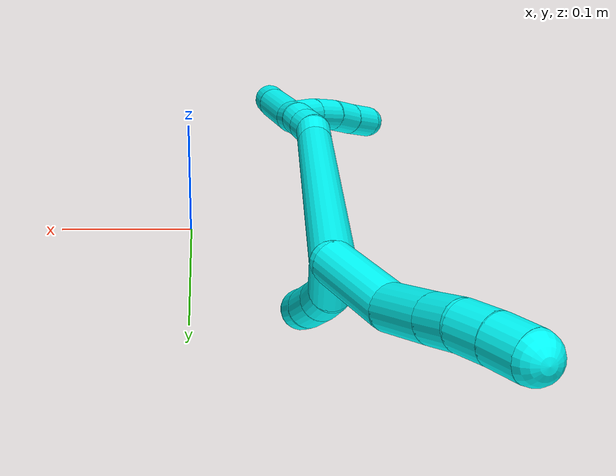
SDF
<sdf version="1.7">
 <world name="default">
  <model name="3">
   <static>0</static>
   <link name="3">
    <collision name="collision-cylinder-e_1_2_8">
     <pose>-0.008274 0.001855 0.024807 -0.074641 -0.321108 0.012093</pose>
     <geometry><cylinder><radius>0.0125</radius><length>0.052433</length></cylinder></geometry>
     <surface>
      <friction><ode><mu>1.16</mu><mu2>1.16</mu2><slip1>0</slip1><slip2>0</slip2></ode></friction>
      <contact><ode><kp>1e+06</kp><kd>1</kd><max_vel>0</max_vel><min_depth>0.001</min_depth></ode></contact>
     </surface>
    </collision>
    <visual name="visual-cylinder-e_1_2_8">
     <pose>-0.008274 0.001855 0.024807 -0.074641 -0.321108 0.012093</pose>
     <geometry><cylinder><radius>0.0125</radius><length>0.052433</length></cylinder></geometry>
     <material><ambient>0.003922 1 0.996078 1</ambient></material>
    </visual>
    <collision name="collision-cylinder-e_2_8_9">
     <pose>-0.018776 0.000256 0.067075 0.195329 -0.124482 -0.012212</pose>
     <geometry><cylinder><radius>0.0125</radius><length>0.035876</length></cylinder></geometry>
     <surface>
      <friction><ode><mu>1.16</mu><mu2>1.16</mu2><slip1>0</slip1><slip2>0</slip2></ode></friction>
      <contact><ode><kp>1e+06</kp><kd>1</kd><max_vel>0</max_vel><min_depth>0.001</min_depth></ode></contact>
     </surface>
    </collision>
    <visual name="visual-cylinder-e_2_8_9">
     <pose>-0.018776 0.000256 0.067075 0.195329 -0.124482 -0.012212</pose>
     <geometry><cylinder><radius>0.0125</radius><length>0.035876</length></cylinder></geometry>
     <material><ambient>0.003922 1 0.996078 1</ambient></material>
    </visual>
    <collision name="collision-cylinder-e_3_9_10">
     <pose>-0.022122 -0.005401 0.09486 0.210179 -0.10562 -0.011151</pose>
     <geometry><cylinder><radius>0.0125</radius><length>0.021231</length></cylinder></geometry>
     <surface>
      <friction><ode><mu>1.16</mu><mu2>1.16</mu2><slip1>0</slip1><slip2>0</slip2></ode></friction>
      <contact><ode><kp>1e+06</kp><kd>1</kd><max_vel>0</max_vel><min_depth>0.001</min_depth></ode></contact>
     </surface>
    </collision>
    <visual name="visual-cylinder-e_3_9_10">
     <pose>-0.022122 -0.005401 0.09486 0.210179 -0.10562 -0.011151</pose>
     <geometry><cylinder><radius>0.0125</radius><length>0.021231</length></cylinder></geometry>
     <material><ambient>0.003922 1 0.996078 1</ambient></material>
    </visual>
    <collision name="collision-cylinder-e_4_10_11">
     <pose>-0.02594 -0.008882 0.114848 0.131555 -0.270067 -0.017899</pose>
     <geometry><cylinder><radius>0.0125</radius><length>0.02023</length></cylinder></geometry>
     <surface>
      <friction><ode><mu>1.16</mu><mu2>1.16</mu2><slip1>0</slip1><slip2>0</slip2></ode></friction>
      <contact><ode><kp>1e+06</kp><kd>1</kd><max_vel>0</max_vel><min_depth>0.001</min_depth></ode></contact>
     </surface>
    </collision>
    <visual name="visual-cylinder-e_4_10_11">
     <pose>-0.02594 -0.008882 0.114848 0.131555 -0.270067 -0.017899</pose>
     <geometry><cylinder><radius>0.0125</radius><length>0.02023</length></cylinder></geometry>
     <material><ambient>0.003922 1 0.996078 1</ambient></material>
    </visual>
    <collision name="collision-cylinder-e_5_11_6">
     <pose>-0.031705 -0.010914 0.134122 0.078225 -0.307945 -0.012147</pose>
     <geometry><cylinder><radius>0.0125</radius><length>0.020231</length></cylinder></geometry>
     <surface>
      <friction><ode><mu>1.16</mu><mu2>1.16</mu2><slip1>0</slip1><slip2>0</slip2></ode></friction>
      <contact><ode><kp>1e+06</kp><kd>1</kd><max_vel>0</max_vel><min_depth>0.001</min_depth></ode></contact>
     </surface>
    </collision>
    <visual name="visual-cylinder-e_5_11_6">
     <pose>-0.031705 -0.010914 0.134122 0.078225 -0.307945 -0.012147</pose>
     <geometry><cylinder><radius>0.0125</radius><length>0.020231</length></cylinder></geometry>
     <material><ambient>0.003922 1 0.996078 1</ambient></material>
    </visual>
    <collision name="collision-cylinder-e_1_2_12">
     <pose>-0.008416 0.008018 -0.011935 -2.55004 -0.529569 1.45436</pose>
     <geometry><cylinder><radius>0.0125</radius><length>0.033321</length></cylinder></geometry>
     <surface>
      <friction><ode><mu>1.16</mu><mu2>1.16</mu2><slip1>0</slip1><slip2>0</slip2></ode></friction>
      <contact><ode><kp>1e+06</kp><kd>1</kd><max_vel>0</max_vel><min_depth>0.001</min_depth></ode></contact>
     </surface>
    </collision>
    <visual name="visual-cylinder-e_1_2_12">
     <pose>-0.008416 0.008018 -0.011935 -2.55004 -0.529569 1.45436</pose>
     <geometry><cylinder><radius>0.0125</radius><length>0.033321</length></cylinder></geometry>
     <material><ambient>0.003922 1 0.996078 1</ambient></material>
    </visual>
    <collision name="collision-cylinder-e_2_12_13">
     <pose>-0.01938 0.020214 -0.032858 -2.70643 -0.251626 1.0393</pose>
     <geometry><cylinder><radius>0.0125</radius><length>0.020467</length></cylinder></geometry>
     <surface>
      <friction><ode><mu>1.16</mu><mu2>1.16</mu2><slip1>0</slip1><slip2>0</slip2></ode></friction>
      <contact><ode><kp>1e+06</kp><kd>1</kd><max_vel>0</max_vel><min_depth>0.001</min_depth></ode></contact>
     </surface>
    </collision>
    <visual name="visual-cylinder-e_2_12_13">
     <pose>-0.01938 0.020214 -0.032858 -2.70643 -0.251626 1.0393</pose>
     <geometry><cylinder><radius>0.0125</radius><length>0.020467</length></cylinder></geometry>
     <material><ambient>0.003922 1 0.996078 1</ambient></material>
    </visual>
    <collision name="collision-cylinder-e_3_13_14">
     <pose>-0.02446 0.029233 -0.053551 -2.74951 -0.197288 0.92462</pose>
     <geometry><cylinder><radius>0.0125</radius><length>0.025835</length></cylinder></geometry>
     <surface>
      <friction><ode><mu>1.16</mu><mu2>1.16</mu2><slip1>0</slip1><slip2>0</slip2></ode></friction>
      <contact><ode><kp>1e+06</kp><kd>1</kd><max_vel>0</max_vel><min_depth>0.001</min_depth></ode></contact>
     </surface>
    </collision>
    <visual name="visual-cylinder-e_3_13_14">
     <pose>-0.02446 0.029233 -0.053551 -2.74951 -0.197288 0.92462</pose>
     <geometry><cylinder><radius>0.0125</radius><length>0.025835</length></cylinder></geometry>
     <material><ambient>0.003922 1 0.996078 1</ambient></material>
    </visual>
    <collision name="collision-cylinder-e_4_14_5">
     <pose>-0.029218 0.036736 -0.074836 -2.87048 -0.220269 1.36255</pose>
     <geometry><cylinder><radius>0.0125</radius><length>0.020377</length></cylinder></geometry>
     <surface>
      <friction><ode><mu>1.16</mu><mu2>1.16</mu2><slip1>0</slip1><slip2>0</slip2></ode></friction>
      <contact><ode><kp>1e+06</kp><kd>1</kd><max_vel>0</max_vel><min_depth>0.001</min_depth></ode></contact>
     </surface>
    </collision>
    <visual name="visual-cylinder-e_4_14_5">
     <pose>-0.029218 0.036736 -0.074836 -2.87048 -0.220269 1.36255</pose>
     <geometry><cylinder><radius>0.0125</radius><length>0.020377</length></cylinder></geometry>
     <material><ambient>0.003922 1 0.996078 1</ambient></material>
    </visual>
    <collision name="collision-cylinder-e_1_2_15">
     <pose>-0.01529 -0.029297 -0.104744 2.86886 -0.139666 -0.942841</pose>
     <geometry><cylinder><radius>0.0125</radius><length>0.219667</length></cylinder></geometry>
     <surface>
      <friction><ode><mu>1.16</mu><mu2>1.16</mu2><slip1>0</slip1><slip2>0</slip2></ode></friction>
      <contact><ode><kp>1e+06</kp><kd>1</kd><max_vel>0</max_vel><min_depth>0.001</min_depth></ode></contact>
     </surface>
    </collision>
    <visual name="visual-cylinder-e_1_2_15">
     <pose>-0.01529 -0.029297 -0.104744 2.86886 -0.139666 -0.942841</pose>
     <geometry><cylinder><radius>0.0125</radius><length>0.219667</length></cylinder></geometry>
     <material><ambient>0.003922 1 0.996078 1</ambient></material>
    </visual>
    <collision name="collision-cylinder-e_2_15_16">
     <pose>-0.030945 -0.062548 -0.218816 2.74062 -0.036007 -0.176744</pose>
     <geometry><cylinder><radius>0.0125</radius><length>0.020275</length></cylinder></geometry>
     <surface>
      <friction><ode><mu>1.16</mu><mu2>1.16</mu2><slip1>0</slip1><slip2>0</slip2></ode></friction>
      <contact><ode><kp>1e+06</kp><kd>1</kd><max_vel>0</max_vel><min_depth>0.001</min_depth></ode></contact>
     </surface>
    </collision>
    <visual name="visual-cylinder-e_2_15_16">
     <pose>-0.030945 -0.062548 -0.218816 2.74062 -0.036007 -0.176744</pose>
     <geometry><cylinder><radius>0.0125</radius><length>0.020275</length></cylinder></geometry>
     <material><ambient>0.003922 1 0.996078 1</ambient></material>
    </visual>
    <collision name="collision-cylinder-e_3_16_17">
     <pose>-0.030818 -0.067435 -0.238093 3.04807 0.049261 0.969199</pose>
     <geometry><cylinder><radius>0.0125</radius><length>0.02001</length></cylinder></geometry>
     <surface>
      <friction><ode><mu>1.16</mu><mu2>1.16</mu2><slip1>0</slip1><slip2>0</slip2></ode></friction>
      <contact><ode><kp>1e+06</kp><kd>1</kd><max_vel>0</max_vel><min_depth>0.001</min_depth></ode></contact>
     </surface>
    </collision>
    <visual name="visual-cylinder-e_3_16_17">
     <pose>-0.030818 -0.067435 -0.238093 3.04807 0.049261 0.969199</pose>
     <geometry><cylinder><radius>0.0125</radius><length>0.02001</length></cylinder></geometry>
     <material><ambient>0.003922 1 0.996078 1</ambient></material>
    </visual>
    <collision name="collision-cylinder-e_4_17_18">
     <pose>-0.029411 -0.069696 -0.257929 3.00813 0.091355 1.19978</pose>
     <geometry><cylinder><radius>0.0125</radius><length>0.020035</length></cylinder></geometry>
     <surface>
      <friction><ode><mu>1.16</mu><mu2>1.16</mu2><slip1>0</slip1><slip2>0</slip2></ode></friction>
      <contact><ode><kp>1e+06</kp><kd>1</kd><max_vel>0</max_vel><min_depth>0.001</min_depth></ode></contact>
     </surface>
    </collision>
    <visual name="visual-cylinder-e_4_17_18">
     <pose>-0.029411 -0.069696 -0.257929 3.00813 0.091355 1.19978</pose>
     <geometry><cylinder><radius>0.0125</radius><length>0.020035</length></cylinder></geometry>
     <material><ambient>0.003922 1 0.996078 1</ambient></material>
    </visual>
    <collision name="collision-cylinder-e_5_18_1">
     <pose>-0.029193 -0.070982 -0.277798 -3.13742 -0.069609 3.02184</pose>
     <geometry><cylinder><radius>0.0125</radius><length>0.020012</length></cylinder></geometry>
     <surface>
      <friction><ode><mu>1.16</mu><mu2>1.16</mu2><slip1>0</slip1><slip2>0</slip2></ode></friction>
      <contact><ode><kp>1e+06</kp><kd>1</kd><max_vel>0</max_vel><min_depth>0.001</min_depth></ode></contact>
     </surface>
    </collision>
    <visual name="visual-cylinder-e_5_18_1">
     <pose>-0.029193 -0.070982 -0.277798 -3.13742 -0.069609 3.02184</pose>
     <geometry><cylinder><radius>0.0125</radius><length>0.020012</length></cylinder></geometry>
     <material><ambient>0.003922 1 0.996078 1</ambient></material>
    </visual>
    <collision name="collision-cylinder-e_1_1_19">
     <pose>-0.039472 -0.076474 -0.296374 2.5695 -0.753129 -1.8626</pose>
     <geometry><cylinder><radius>0.0125</radius><length>0.028024</length></cylinder></geometry>
     <surface>
      <friction><ode><mu>1.16</mu><mu2>1.16</mu2><slip1>0</slip1><slip2>0</slip2></ode></friction>
      <contact><ode><kp>1e+06</kp><kd>1</kd><max_vel>0</max_vel><min_depth>0.001</min_depth></ode></contact>
     </surface>
    </collision>
    <visual name="visual-cylinder-e_1_1_19">
     <pose>-0.039472 -0.076474 -0.296374 2.5695 -0.753129 -1.8626</pose>
     <geometry><cylinder><radius>0.0125</radius><length>0.028024</length></cylinder></geometry>
     <material><ambient>0.003922 1 0.996078 1</ambient></material>
    </visual>
    <collision name="collision-cylinder-e_2_19_20">
     <pose>-0.058743 -0.085966 -0.31108 2.56697 -0.926278 -2.07296</pose>
     <geometry><cylinder><radius>0.0125</radius><length>0.024237</length></cylinder></geometry>
     <surface>
      <friction><ode><mu>1.16</mu><mu2>1.16</mu2><slip1>0</slip1><slip2>0</slip2></ode></friction>
      <contact><ode><kp>1e+06</kp><kd>1</kd><max_vel>0</max_vel><min_depth>0.001</min_depth></ode></contact>
     </surface>
    </collision>
    <visual name="visual-cylinder-e_2_19_20">
     <pose>-0.058743 -0.085966 -0.31108 2.56697 -0.926278 -2.07296</pose>
     <geometry><cylinder><radius>0.0125</radius><length>0.024237</length></cylinder></geometry>
     <material><ambient>0.003922 1 0.996078 1</ambient></material>
    </visual>
    <collision name="collision-cylinder-e_3_20_21">
     <pose>-0.077944 -0.092478 -0.323097 2.73329 -0.976176 -2.39797</pose>
     <geometry><cylinder><radius>0.0125</radius><length>0.022971</length></cylinder></geometry>
     <surface>
      <friction><ode><mu>1.16</mu><mu2>1.16</mu2><slip1>0</slip1><slip2>0</slip2></ode></friction>
      <contact><ode><kp>1e+06</kp><kd>1</kd><max_vel>0</max_vel><min_depth>0.001</min_depth></ode></contact>
     </surface>
    </collision>
    <visual name="visual-cylinder-e_3_20_21">
     <pose>-0.077944 -0.092478 -0.323097 2.73329 -0.976176 -2.39797</pose>
     <geometry><cylinder><radius>0.0125</radius><length>0.022971</length></cylinder></geometry>
     <material><ambient>0.003922 1 0.996078 1</ambient></material>
    </visual>
    <collision name="collision-cylinder-e_4_21_4">
     <pose>-0.097487 -0.098192 -0.335545 2.69176 -0.943879 -2.29881</pose>
     <geometry><cylinder><radius>0.0125</radius><length>0.024769</length></cylinder></geometry>
     <surface>
      <friction><ode><mu>1.16</mu><mu2>1.16</mu2><slip1>0</slip1><slip2>0</slip2></ode></friction>
      <contact><ode><kp>1e+06</kp><kd>1</kd><max_vel>0</max_vel><min_depth>0.001</min_depth></ode></contact>
     </surface>
    </collision>
    <visual name="visual-cylinder-e_4_21_4">
     <pose>-0.097487 -0.098192 -0.335545 2.69176 -0.943879 -2.29881</pose>
     <geometry><cylinder><radius>0.0125</radius><length>0.024769</length></cylinder></geometry>
     <material><ambient>0.003922 1 0.996078 1</ambient></material>
    </visual>
    <collision name="collision-cylinder-e_1_1_22">
     <pose>-0.029979 -0.073916 -0.320404 3.05064 -0.002744 -0.060284</pose>
     <geometry><cylinder><radius>0.0125</radius><length>0.06552</length></cylinder></geometry>
     <surface>
      <friction><ode><mu>1.16</mu><mu2>1.16</mu2><slip1>0</slip1><slip2>0</slip2></ode></friction>
      <contact><ode><kp>1e+06</kp><kd>1</kd><max_vel>0</max_vel><min_depth>0.001</min_depth></ode></contact>
     </surface>
    </collision>
    <visual name="visual-cylinder-e_1_1_22">
     <pose>-0.029979 -0.073916 -0.320404 3.05064 -0.002744 -0.060284</pose>
     <geometry><cylinder><radius>0.0125</radius><length>0.06552</length></cylinder></geometry>
     <material><ambient>0.003922 1 0.996078 1</ambient></material>
    </visual>
    <collision name="collision-cylinder-e_2_22_3">
     <pose>-0.032103 -0.078506 -0.370071 3.04712 -0.118287 -1.79414</pose>
     <geometry><cylinder><radius>0.0125</radius><length>0.03448</length></cylinder></geometry>
     <surface>
      <friction><ode><mu>1.16</mu><mu2>1.16</mu2><slip1>0</slip1><slip2>0</slip2></ode></friction>
      <contact><ode><kp>1e+06</kp><kd>1</kd><max_vel>0</max_vel><min_depth>0.001</min_depth></ode></contact>
     </surface>
    </collision>
    <visual name="visual-cylinder-e_2_22_3">
     <pose>-0.032103 -0.078506 -0.370071 3.04712 -0.118287 -1.79414</pose>
     <geometry><cylinder><radius>0.0125</radius><length>0.03448</length></cylinder></geometry>
     <material><ambient>0.003922 1 0.996078 1</ambient></material>
    </visual>
    <collision name="collision-sphere-3">
     <pose>-0.034138 -0.080121 -0.387115 0 -0 0</pose>
     <geometry><sphere><radius>0.0125</radius></sphere></geometry>
     <surface>
      <friction><ode><mu>1.16</mu><mu2>1.16</mu2><slip1>0</slip1><slip2>0</slip2></ode></friction>
      <contact><ode><kp>1e+06</kp><kd>1</kd><max_vel>0</max_vel><min_depth>0.001</min_depth></ode></contact>
     </surface>
    </collision>
    <visual name="visual-sphere-3">
     <pose>-0.034138 -0.080121 -0.387115 0 -0 0</pose>
     <geometry><sphere><radius>0.0125</radius></sphere></geometry>
     <material><ambient>0.003922 1 0.996078 1</ambient></material>
    </visual>
    <collision name="collision-sphere-22">
     <pose>-0.030069 -0.076891 -0.353028 0 -0 0</pose>
     <geometry><sphere><radius>0.0125</radius></sphere></geometry>
     <surface>
      <friction><ode><mu>1.16</mu><mu2>1.16</mu2><slip1>0</slip1><slip2>0</slip2></ode></friction>
      <contact><ode><kp>1e+06</kp><kd>1</kd><max_vel>0</max_vel><min_depth>0.001</min_depth></ode></contact>
     </surface>
    </collision>
    <visual name="visual-sphere-22">
     <pose>-0.030069 -0.076891 -0.353028 0 -0 0</pose>
     <geometry><sphere><radius>0.0125</radius></sphere></geometry>
     <material><ambient>0.003922 1 0.996078 1</ambient></material>
    </visual>
    <collision name="collision-sphere-4">
     <pose>-0.107517 -0.101351 -0.342087 0 -0 0</pose>
     <geometry><sphere><radius>0.0125</radius></sphere></geometry>
     <surface>
      <friction><ode><mu>1.16</mu><mu2>1.16</mu2><slip1>0</slip1><slip2>0</slip2></ode></friction>
      <contact><ode><kp>1e+06</kp><kd>1</kd><max_vel>0</max_vel><min_depth>0.001</min_depth></ode></contact>
     </surface>
    </collision>
    <visual name="visual-sphere-4">
     <pose>-0.107517 -0.101351 -0.342087 0 -0 0</pose>
     <geometry><sphere><radius>0.0125</radius></sphere></geometry>
     <material><ambient>0.003922 1 0.996078 1</ambient></material>
    </visual>
    <collision name="collision-sphere-21">
     <pose>-0.087458 -0.095032 -0.329002 0 -0 0</pose>
     <geometry><sphere><radius>0.0125</radius></sphere></geometry>
     <surface>
      <friction><ode><mu>1.16</mu><mu2>1.16</mu2><slip1>0</slip1><slip2>0</slip2></ode></friction>
      <contact><ode><kp>1e+06</kp><kd>1</kd><max_vel>0</max_vel><min_depth>0.001</min_depth></ode></contact>
     </surface>
    </collision>
    <visual name="visual-sphere-21">
     <pose>-0.087458 -0.095032 -0.329002 0 -0 0</pose>
     <geometry><sphere><radius>0.0125</radius></sphere></geometry>
     <material><ambient>0.003922 1 0.996078 1</ambient></material>
    </visual>
    <collision name="collision-sphere-20">
     <pose>-0.06843 -0.089923 -0.317192 0 -0 0</pose>
     <geometry><sphere><radius>0.0125</radius></sphere></geometry>
     <surface>
      <friction><ode><mu>1.16</mu><mu2>1.16</mu2><slip1>0</slip1><slip2>0</slip2></ode></friction>
      <contact><ode><kp>1e+06</kp><kd>1</kd><max_vel>0</max_vel><min_depth>0.001</min_depth></ode></contact>
     </surface>
    </collision>
    <visual name="visual-sphere-20">
     <pose>-0.06843 -0.089923 -0.317192 0 -0 0</pose>
     <geometry><sphere><radius>0.0125</radius></sphere></geometry>
     <material><ambient>0.003922 1 0.996078 1</ambient></material>
    </visual>
    <collision name="collision-sphere-6">
     <pose>-0.034771 -0.011668 0.143732 0 -0 0</pose>
     <geometry><sphere><radius>0.0125</radius></sphere></geometry>
     <surface>
      <friction><ode><mu>1.16</mu><mu2>1.16</mu2><slip1>0</slip1><slip2>0</slip2></ode></friction>
      <contact><ode><kp>1e+06</kp><kd>1</kd><max_vel>0</max_vel><min_depth>0.001</min_depth></ode></contact>
     </surface>
    </collision>
    <visual name="visual-sphere-6">
     <pose>-0.034771 -0.011668 0.143732 0 -0 0</pose>
     <geometry><sphere><radius>0.0125</radius></sphere></geometry>
     <material><ambient>0.003922 1 0.996078 1</ambient></material>
    </visual>
    <collision name="collision-sphere-11">
     <pose>-0.028639 -0.010161 0.124512 0 -0 0</pose>
     <geometry><sphere><radius>0.0125</radius></sphere></geometry>
     <surface>
      <friction><ode><mu>1.16</mu><mu2>1.16</mu2><slip1>0</slip1><slip2>0</slip2></ode></friction>
      <contact><ode><kp>1e+06</kp><kd>1</kd><max_vel>0</max_vel><min_depth>0.001</min_depth></ode></contact>
     </surface>
    </collision>
    <visual name="visual-sphere-11">
     <pose>-0.028639 -0.010161 0.124512 0 -0 0</pose>
     <geometry><sphere><radius>0.0125</radius></sphere></geometry>
     <material><ambient>0.003922 1 0.996078 1</ambient></material>
    </visual>
    <collision name="collision-sphere-10">
     <pose>-0.023241 -0.007604 0.105183 0 -0 0</pose>
     <geometry><sphere><radius>0.0125</radius></sphere></geometry>
     <surface>
      <friction><ode><mu>1.16</mu><mu2>1.16</mu2><slip1>0</slip1><slip2>0</slip2></ode></friction>
      <contact><ode><kp>1e+06</kp><kd>1</kd><max_vel>0</max_vel><min_depth>0.001</min_depth></ode></contact>
     </surface>
    </collision>
    <visual name="visual-sphere-10">
     <pose>-0.023241 -0.007604 0.105183 0 -0 0</pose>
     <geometry><sphere><radius>0.0125</radius></sphere></geometry>
     <material><ambient>0.003922 1 0.996078 1</ambient></material>
    </visual>
    <collision name="collision-sphere-9">
     <pose>-0.021003 -0.003199 0.084536 0 -0 0</pose>
     <geometry><sphere><radius>0.0125</radius></sphere></geometry>
     <surface>
      <friction><ode><mu>1.16</mu><mu2>1.16</mu2><slip1>0</slip1><slip2>0</slip2></ode></friction>
      <contact><ode><kp>1e+06</kp><kd>1</kd><max_vel>0</max_vel><min_depth>0.001</min_depth></ode></contact>
     </surface>
    </collision>
    <visual name="visual-sphere-9">
     <pose>-0.021003 -0.003199 0.084536 0 -0 0</pose>
     <geometry><sphere><radius>0.0125</radius></sphere></geometry>
     <material><ambient>0.003922 1 0.996078 1</ambient></material>
    </visual>
    <collision name="collision-sphere-2">
     <geometry><sphere><radius>0.0125</radius></sphere></geometry>
     <surface>
      <friction><ode><mu>1.16</mu><mu2>1.16</mu2><slip1>0</slip1><slip2>0</slip2></ode></friction>
      <contact><ode><kp>1e+06</kp><kd>1</kd><max_vel>0</max_vel><min_depth>0.001</min_depth></ode></contact>
     </surface>
    </collision>
    <visual name="visual-sphere-2">
     <geometry><sphere><radius>0.0125</radius></sphere></geometry>
     <material><ambient>0.003922 1 0.996078 1</ambient></material>
    </visual>
    <collision name="collision-sphere-19">
     <pose>-0.049055 -0.082009 -0.304969 0 -0 0</pose>
     <geometry><sphere><radius>0.0125</radius></sphere></geometry>
     <surface>
      <friction><ode><mu>1.16</mu><mu2>1.16</mu2><slip1>0</slip1><slip2>0</slip2></ode></friction>
      <contact><ode><kp>1e+06</kp><kd>1</kd><max_vel>0</max_vel><min_depth>0.001</min_depth></ode></contact>
     </surface>
    </collision>
    <visual name="visual-sphere-19">
     <pose>-0.049055 -0.082009 -0.304969 0 -0 0</pose>
     <geometry><sphere><radius>0.0125</radius></sphere></geometry>
     <material><ambient>0.003922 1 0.996078 1</ambient></material>
    </visual>
    <collision name="collision-sphere-8">
     <pose>-0.016549 0.00371 0.049615 0 -0 0</pose>
     <geometry><sphere><radius>0.0125</radius></sphere></geometry>
     <surface>
      <friction><ode><mu>1.16</mu><mu2>1.16</mu2><slip1>0</slip1><slip2>0</slip2></ode></friction>
      <contact><ode><kp>1e+06</kp><kd>1</kd><max_vel>0</max_vel><min_depth>0.001</min_depth></ode></contact>
     </surface>
    </collision>
    <visual name="visual-sphere-8">
     <pose>-0.016549 0.00371 0.049615 0 -0 0</pose>
     <geometry><sphere><radius>0.0125</radius></sphere></geometry>
     <material><ambient>0.003922 1 0.996078 1</ambient></material>
    </visual>
    <collision name="collision-sphere-12">
     <pose>-0.016832 0.016036 -0.02387 0 -0 0</pose>
     <geometry><sphere><radius>0.0125</radius></sphere></geometry>
     <surface>
      <friction><ode><mu>1.16</mu><mu2>1.16</mu2><slip1>0</slip1><slip2>0</slip2></ode></friction>
      <contact><ode><kp>1e+06</kp><kd>1</kd><max_vel>0</max_vel><min_depth>0.001</min_depth></ode></contact>
     </surface>
    </collision>
    <visual name="visual-sphere-12">
     <pose>-0.016832 0.016036 -0.02387 0 -0 0</pose>
     <geometry><sphere><radius>0.0125</radius></sphere></geometry>
     <material><ambient>0.003922 1 0.996078 1</ambient></material>
    </visual>
    <collision name="collision-sphere-13">
     <pose>-0.021928 0.024393 -0.041846 0 -0 0</pose>
     <geometry><sphere><radius>0.0125</radius></sphere></geometry>
     <surface>
      <friction><ode><mu>1.16</mu><mu2>1.16</mu2><slip1>0</slip1><slip2>0</slip2></ode></friction>
      <contact><ode><kp>1e+06</kp><kd>1</kd><max_vel>0</max_vel><min_depth>0.001</min_depth></ode></contact>
     </surface>
    </collision>
    <visual name="visual-sphere-13">
     <pose>-0.021928 0.024393 -0.041846 0 -0 0</pose>
     <geometry><sphere><radius>0.0125</radius></sphere></geometry>
     <material><ambient>0.003922 1 0.996078 1</ambient></material>
    </visual>
    <collision name="collision-sphere-14">
     <pose>-0.026992 0.034073 -0.065257 0 -0 0</pose>
     <geometry><sphere><radius>0.0125</radius></sphere></geometry>
     <surface>
      <friction><ode><mu>1.16</mu><mu2>1.16</mu2><slip1>0</slip1><slip2>0</slip2></ode></friction>
      <contact><ode><kp>1e+06</kp><kd>1</kd><max_vel>0</max_vel><min_depth>0.001</min_depth></ode></contact>
     </surface>
    </collision>
    <visual name="visual-sphere-14">
     <pose>-0.026992 0.034073 -0.065257 0 -0 0</pose>
     <geometry><sphere><radius>0.0125</radius></sphere></geometry>
     <material><ambient>0.003922 1 0.996078 1</ambient></material>
    </visual>
    <collision name="collision-sphere-5">
     <pose>-0.031444 0.039398 -0.084415 0 -0 0</pose>
     <geometry><sphere><radius>0.0125</radius></sphere></geometry>
     <surface>
      <friction><ode><mu>1.16</mu><mu2>1.16</mu2><slip1>0</slip1><slip2>0</slip2></ode></friction>
      <contact><ode><kp>1e+06</kp><kd>1</kd><max_vel>0</max_vel><min_depth>0.001</min_depth></ode></contact>
     </surface>
    </collision>
    <visual name="visual-sphere-5">
     <pose>-0.031444 0.039398 -0.084415 0 -0 0</pose>
     <geometry><sphere><radius>0.0125</radius></sphere></geometry>
     <material><ambient>0.003922 1 0.996078 1</ambient></material>
    </visual>
    <collision name="collision-sphere-15">
     <pose>-0.03058 -0.058594 -0.209488 0 -0 0</pose>
     <geometry><sphere><radius>0.0125</radius></sphere></geometry>
     <surface>
      <friction><ode><mu>1.16</mu><mu2>1.16</mu2><slip1>0</slip1><slip2>0</slip2></ode></friction>
      <contact><ode><kp>1e+06</kp><kd>1</kd><max_vel>0</max_vel><min_depth>0.001</min_depth></ode></contact>
     </surface>
    </collision>
    <visual name="visual-sphere-15">
     <pose>-0.03058 -0.058594 -0.209488 0 -0 0</pose>
     <geometry><sphere><radius>0.0125</radius></sphere></geometry>
     <material><ambient>0.003922 1 0.996078 1</ambient></material>
    </visual>
    <collision name="collision-sphere-16">
     <pose>-0.03131 -0.066502 -0.228143 0 -0 0</pose>
     <geometry><sphere><radius>0.0125</radius></sphere></geometry>
     <surface>
      <friction><ode><mu>1.16</mu><mu2>1.16</mu2><slip1>0</slip1><slip2>0</slip2></ode></friction>
      <contact><ode><kp>1e+06</kp><kd>1</kd><max_vel>0</max_vel><min_depth>0.001</min_depth></ode></contact>
     </surface>
    </collision>
    <visual name="visual-sphere-16">
     <pose>-0.03131 -0.066502 -0.228143 0 -0 0</pose>
     <geometry><sphere><radius>0.0125</radius></sphere></geometry>
     <material><ambient>0.003922 1 0.996078 1</ambient></material>
    </visual>
    <collision name="collision-sphere-17">
     <pose>-0.030325 -0.068369 -0.248042 0 -0 0</pose>
     <geometry><sphere><radius>0.0125</radius></sphere></geometry>
     <surface>
      <friction><ode><mu>1.16</mu><mu2>1.16</mu2><slip1>0</slip1><slip2>0</slip2></ode></friction>
      <contact><ode><kp>1e+06</kp><kd>1</kd><max_vel>0</max_vel><min_depth>0.001</min_depth></ode></contact>
     </surface>
    </collision>
    <visual name="visual-sphere-17">
     <pose>-0.030325 -0.068369 -0.248042 0 -0 0</pose>
     <geometry><sphere><radius>0.0125</radius></sphere></geometry>
     <material><ambient>0.003922 1 0.996078 1</ambient></material>
    </visual>
    <collision name="collision-sphere-18">
     <pose>-0.028497 -0.071023 -0.267816 0 -0 0</pose>
     <geometry><sphere><radius>0.0125</radius></sphere></geometry>
     <surface>
      <friction><ode><mu>1.16</mu><mu2>1.16</mu2><slip1>0</slip1><slip2>0</slip2></ode></friction>
      <contact><ode><kp>1e+06</kp><kd>1</kd><max_vel>0</max_vel><min_depth>0.001</min_depth></ode></contact>
     </surface>
    </collision>
    <visual name="visual-sphere-18">
     <pose>-0.028497 -0.071023 -0.267816 0 -0 0</pose>
     <geometry><sphere><radius>0.0125</radius></sphere></geometry>
     <material><ambient>0.003922 1 0.996078 1</ambient></material>
    </visual>
    <collision name="collision-sphere-1">
     <pose>-0.029889 -0.07094 -0.28778 0 -0 0</pose>
     <geometry><sphere><radius>0.0125</radius></sphere></geometry>
     <surface>
      <friction><ode><mu>1.16</mu><mu2>1.16</mu2><slip1>0</slip1><slip2>0</slip2></ode></friction>
      <contact><ode><kp>1e+06</kp><kd>1</kd><max_vel>0</max_vel><min_depth>0.001</min_depth></ode></contact>
     </surface>
    </collision>
    <visual name="visual-sphere-1">
     <pose>-0.029889 -0.07094 -0.28778 0 -0 0</pose>
     <geometry><sphere><radius>0.0125</radius></sphere></geometry>
     <material><ambient>0.003922 1 0.996078 1</ambient></material>
    </visual>
    <inertial>
     <pose>-0.026974 -0.035236 -0.135318 0 -0 0</pose>
     <mass>0.75</mass>
     <inertia>
      <ixx>-0.000161</ixx>
      <ixy>0</ixy>
      <ixz>0</ixz>
      <iyy>-0.001195</iyy>
      <iyz>0</iyz>
      <izz>0.000353</izz>
     </inertia>
    </inertial>
   </link>
   <pose>-0.079922 0.20735 0.164861 -0.955787 -0.534356 -0.105035</pose>
  </model>
 </world>
</sdf>
